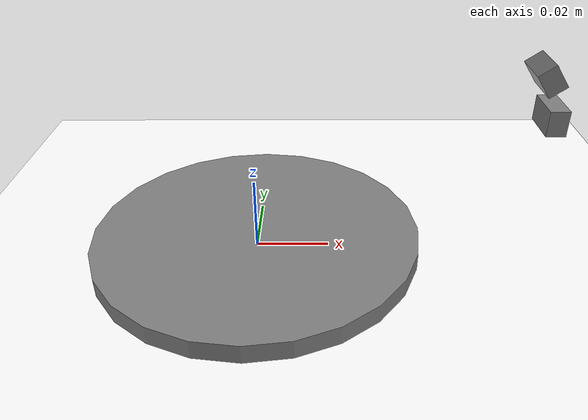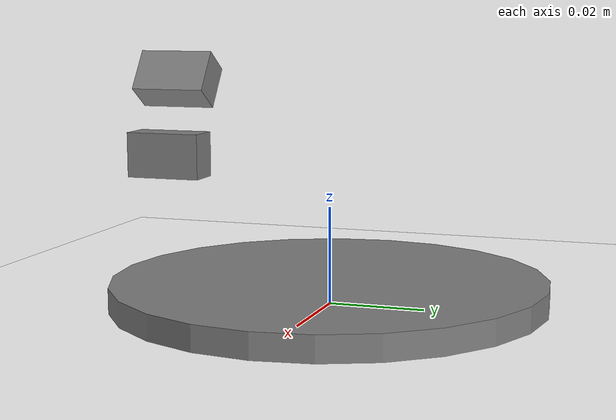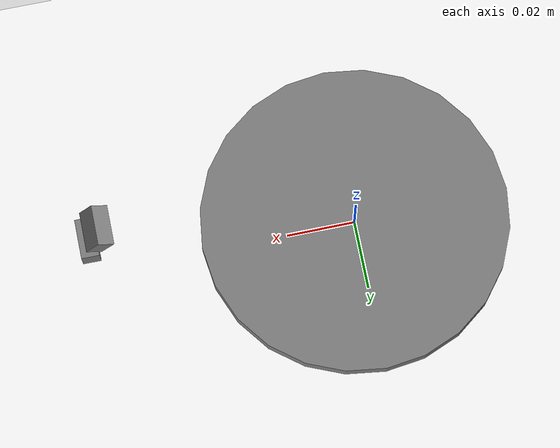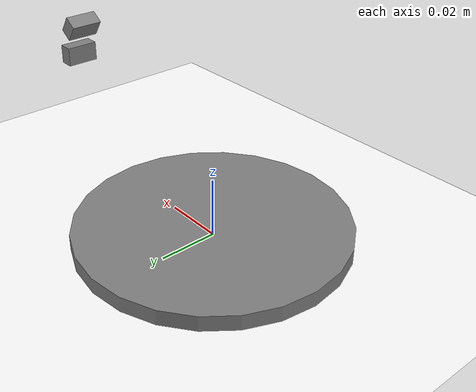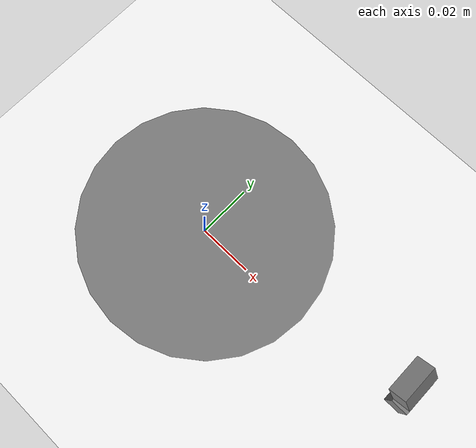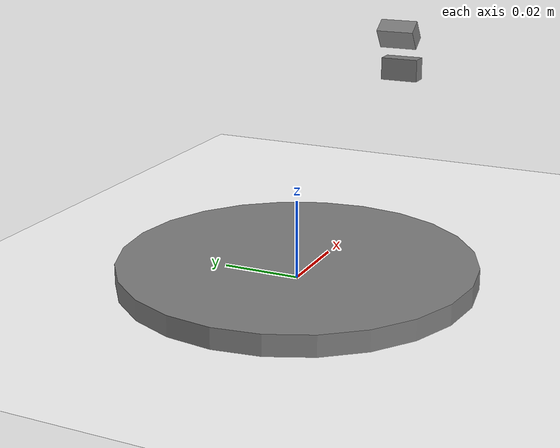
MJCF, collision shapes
<mujoco model="mug">
  <visual>
    <headlight ambient="0 0 0" diffuse="0 0 0" specular="1 1 1"/>
    <quality shadowsize="8192"/>
  </visual>

  <asset>
    <texture name="mug" file="mug.png" type="2d" width="1024" height="1024"/>
    <material name="mug" texture="mug" specular="1" shininess="1"/>
    <mesh name="mug" file="mug.obj" scale=".01 .01 .01"/>
    <material name="floor" reflectance=".1"/>
  </asset>

  <default>
    <default class="collision">
      <geom type="box" group="3"/>
      <default class="cup">
        <geom size="0.0026 0.00704 0.033"/>
      </default>
      <default class="handle">
        <geom size="0.0025 0.00328 0.0055"/>
      </default>
    </default>
  </default>

  <worldbody>
    <light pos=".4 -.4 .3" dir="-2 2 -1.5" diffuse=".6 .6 .6"/>
    <light pos="-.2 -.4 .3" dir="1 2 -1.5" diffuse=".6 .6 .6"/>
    <geom type="plane" size="5 5 .01" rgba="1 1 1 1" material="floor"/>
    <body name="mug">
      <freejoint/>
      <geom type="mesh" mesh="mug" material="mug" euler="90 0 0" group="1" contype="0" conaffinity="0"/>
      <geom class="cup" type="cylinder" size="0.045 0.0026" pos="0 0 0.0026"/>
      <body name="handle" pos="0.056 0 0.0395" euler="90 0 0">
        <geom class="handle" pos="0.0193 0 0" euler="0 0 0"/>
        <geom class="handle" pos="0.0159 0.0108 0" euler="0 0 34.3"/>
      </body>
    </body>
  </worldbody>
</mujoco>
